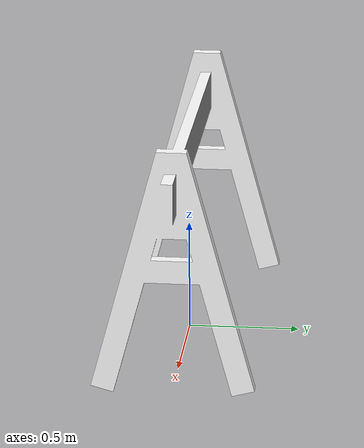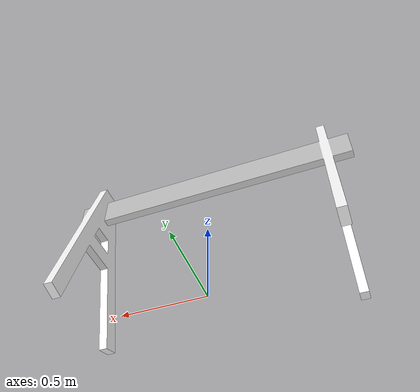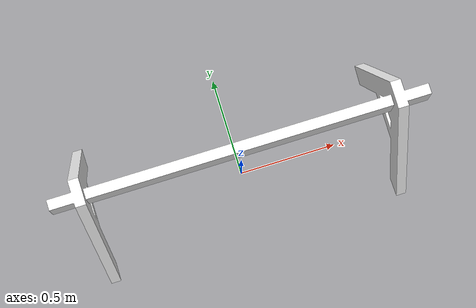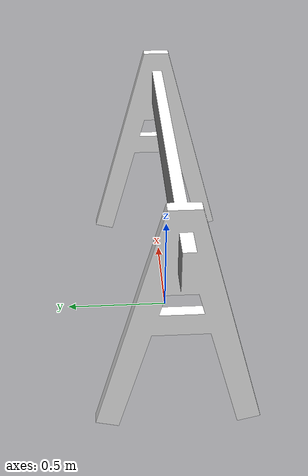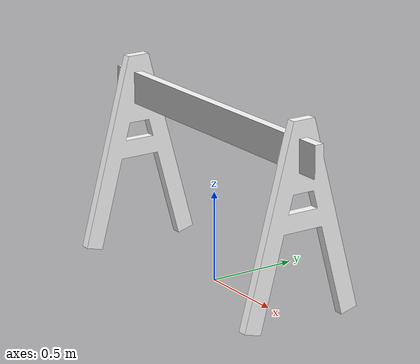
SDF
<?xml version="1.0"?>
<sdf version="1.4">
  <model name="Sawhorse">
    <link name="link">
      <collision name="collision">
        <geometry>
          <mesh>
            <scale>1 1 1</scale>
            <uri>model://sawhorse/meshes/sawhorse_1.dae</uri>
          </mesh>
        </geometry>
      </collision>
      <visual name="visual">
        <geometry>
          <mesh>
            <scale>1 1 1</scale>
            <uri>model://sawhorse/meshes/sawhorse_1.dae</uri>
          </mesh>
        </geometry>
      </visual>
    </link>
  </model>
</sdf>
